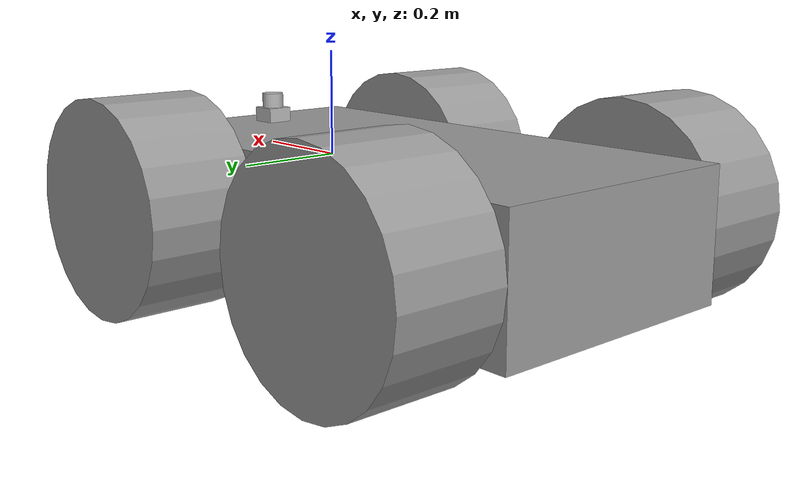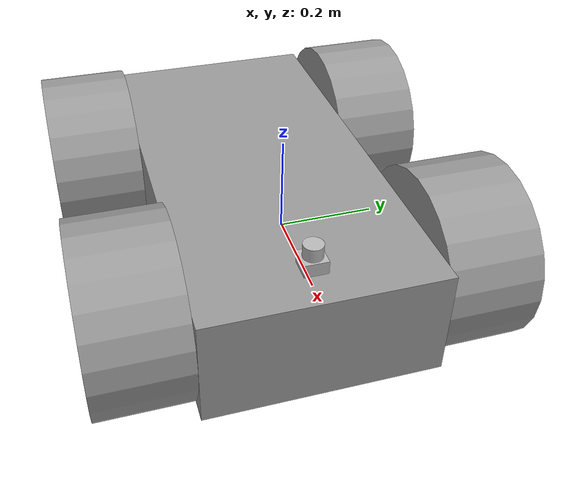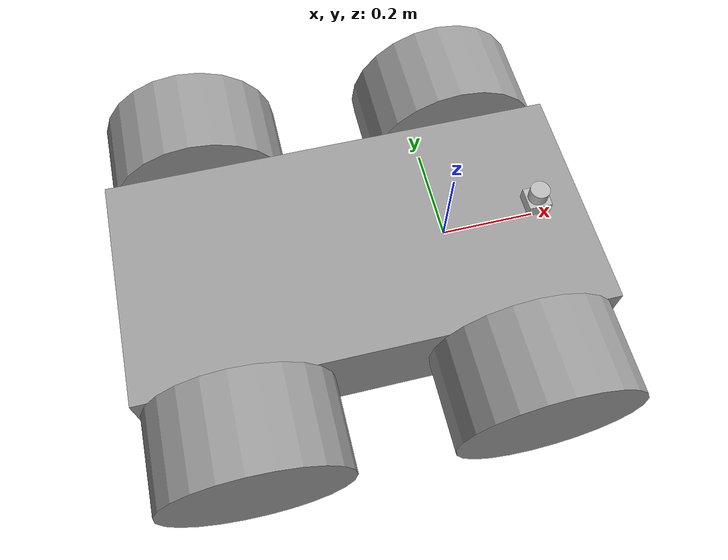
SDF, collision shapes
<?xml version='1.0'?>
<sdf version='1.7'>
  <model name='AGV_with_hokuyu_lidar'>
    <model name='AGV'>
      <link name='link_0'>
        <inertial>
          <mass>0.165304</mass>
          <inertia>
            <ixx>0.00689409</ixx>
            <ixy>0</ixy>
            <ixz>0</ixz>
            <iyy>0.0137549</iyy>
            <iyz>0</iyz>
            <izz>0.018778</izz>
          </inertia>
          <pose>0 0 0 0 -0 0</pose>
        </inertial>
        <pose>0 0 -0.008 0 -0 0</pose>
        <gravity>1</gravity>
        <self_collide>0</self_collide>
        <kinematic>0</kinematic>
        <enable_wind>0</enable_wind>
        <visual name='visual'>
          <pose>0 0 0 0 -0 0</pose>
          <geometry>
            <box>
              <size>1 0.5 0.24</size>
            </box>
          </geometry>
          <material>
            <lighting>1</lighting>
            <script>
              <uri>file://media/materials/scripts/gazebo.material</uri>
              <name>Gazebo/Grey</name>
            </script>
            <shader type='pixel'>
              <normal_map>__default__</normal_map>
            </shader>
            <ambient>0.3 0.3 0.3 1</ambient>
            <diffuse>0.7 0.7 0.7 1</diffuse>
            <specular>0.01 0.01 0.01 1</specular>
            <emissive>0 0 0 1</emissive>
          </material>
          <transparency>0</transparency>
          <cast_shadows>1</cast_shadows>
        </visual>
        <collision name='collision'>
          <laser_retro>0</laser_retro>
          <max_contacts>10</max_contacts>
          <pose>0 0 0 0 -0 0</pose>
          <geometry>
            <box>
              <size>1 0.5 0.24</size>
            </box>
          </geometry>
          <surface>
            <friction>
              <ode>
                <mu>1</mu>
                <mu2>1</mu2>
                <fdir1>0 0 0</fdir1>
                <slip1>0</slip1>
                <slip2>0</slip2>
              </ode>
              <torsional>
                <coefficient>1</coefficient>
                <patch_radius>0</patch_radius>
                <surface_radius>0</surface_radius>
                <use_patch_radius>1</use_patch_radius>
                <ode>
                  <slip>0</slip>
                </ode>
              </torsional>
            </friction>
            <bounce>
              <restitution_coefficient>0</restitution_coefficient>
              <threshold>1e+06</threshold>
            </bounce>
            <contact>
              <collide_without_contact>0</collide_without_contact>
              <collide_without_contact_bitmask>1</collide_without_contact_bitmask>
              <collide_bitmask>1</collide_bitmask>
              <ode>
                <soft_cfm>0</soft_cfm>
                <soft_erp>0.2</soft_erp>
                <kp>1e+13</kp>
                <kd>1</kd>
                <max_vel>0.01</max_vel>
                <min_depth>0</min_depth>
              </ode>
              <bullet>
                <split_impulse>1</split_impulse>
                <split_impulse_penetration_threshold>-0.01</split_impulse_penetration_threshold>
                <soft_cfm>0</soft_cfm>
                <soft_erp>0.2</soft_erp>
                <kp>1e+13</kp>
                <kd>1</kd>
              </bullet>
            </contact>
          </surface>
        </collision>
      </link>
      <link name='link_1_clone_0'>
        <inertial>
          <mass>1</mass>
          <inertia>
            <ixx>0.145833</ixx>
            <ixy>0</ixy>
            <ixz>0</ixz>
            <iyy>0.145833</iyy>
            <iyz>0</iyz>
            <izz>0.125</izz>
          </inertia>
          <pose>0 0 0 0 -0 0</pose>
        </inertial>
        <pose>0.3 0.350019 0.002 1.5707 -0 0</pose>
        <gravity>1</gravity>
        <self_collide>0</self_collide>
        <kinematic>0</kinematic>
        <enable_wind>0</enable_wind>
        <visual name='visual'>
          <pose>0 0 0 0 -0 0</pose>
          <geometry>
            <cylinder>
              <radius>0.2</radius>
              <length>0.2</length>
            </cylinder>
          </geometry>
          <material>
            <lighting>1</lighting>
            <script>
              <uri>file://media/materials/scripts/gazebo.material</uri>
              <name>Gazebo/Grey</name>
            </script>
            <shader type='pixel'>
              <normal_map>__default__</normal_map>
            </shader>
            <ambient>0.3 0.3 0.3 1</ambient>
            <diffuse>0.7 0.7 0.7 1</diffuse>
            <specular>0.01 0.01 0.01 1</specular>
            <emissive>0 0 0 1</emissive>
          </material>
          <transparency>0</transparency>
          <cast_shadows>1</cast_shadows>
        </visual>
        <collision name='collision'>
          <laser_retro>0</laser_retro>
          <max_contacts>10</max_contacts>
          <pose>0 0 0 0 -0 0</pose>
          <geometry>
            <cylinder>
              <radius>0.2</radius>
              <length>0.2</length>
            </cylinder>
          </geometry>
          <surface>
            <friction>
              <ode>
                <mu>1</mu>
                <mu2>1</mu2>
                <fdir1>0 0 0</fdir1>
                <slip1>0</slip1>
                <slip2>0</slip2>
              </ode>
              <torsional>
                <coefficient>1</coefficient>
                <patch_radius>0</patch_radius>
                <surface_radius>0</surface_radius>
                <use_patch_radius>1</use_patch_radius>
                <ode>
                  <slip>0</slip>
                </ode>
              </torsional>
            </friction>
            <bounce>
              <restitution_coefficient>0</restitution_coefficient>
              <threshold>1e+06</threshold>
            </bounce>
            <contact>
              <collide_without_contact>0</collide_without_contact>
              <collide_without_contact_bitmask>1</collide_without_contact_bitmask>
              <collide_bitmask>1</collide_bitmask>
              <ode>
                <soft_cfm>0</soft_cfm>
                <soft_erp>0.2</soft_erp>
                <kp>1e+13</kp>
                <kd>1</kd>
                <max_vel>0.01</max_vel>
                <min_depth>0</min_depth>
              </ode>
              <bullet>
                <split_impulse>1</split_impulse>
                <split_impulse_penetration_threshold>-0.01</split_impulse_penetration_threshold>
                <soft_cfm>0</soft_cfm>
                <soft_erp>0.2</soft_erp>
                <kp>1e+13</kp>
                <kd>1</kd>
              </bullet>
            </contact>
          </surface>
        </collision>
      </link>
      <link name='link_1_clone_0_clone'>
        <inertial>
          <mass>1</mass>
          <inertia>
            <ixx>0.145833</ixx>
            <ixy>0</ixy>
            <ixz>0</ixz>
            <iyy>0.145833</iyy>
            <iyz>0</iyz>
            <izz>0.125</izz>
          </inertia>
          <pose>0 0 0 0 -0 0</pose>
        </inertial>
        <pose>-0.3 -0.350019 0.002 1.5707 -0 0</pose>
        <gravity>1</gravity>
        <self_collide>0</self_collide>
        <kinematic>0</kinematic>
        <enable_wind>0</enable_wind>
        <visual name='visual'>
          <pose>0 0 0 0 -0 0</pose>
          <geometry>
            <cylinder>
              <radius>0.2</radius>
              <length>0.2</length>
            </cylinder>
          </geometry>
          <material>
            <lighting>1</lighting>
            <script>
              <uri>file://media/materials/scripts/gazebo.material</uri>
              <name>Gazebo/Grey</name>
            </script>
            <shader type='pixel'>
              <normal_map>__default__</normal_map>
            </shader>
            <ambient>0.3 0.3 0.3 1</ambient>
            <diffuse>0.7 0.7 0.7 1</diffuse>
            <specular>0.01 0.01 0.01 1</specular>
            <emissive>0 0 0 1</emissive>
          </material>
          <transparency>0</transparency>
          <cast_shadows>1</cast_shadows>
        </visual>
        <collision name='collision'>
          <laser_retro>0</laser_retro>
          <max_contacts>10</max_contacts>
          <pose>0 0 0 0 -0 0</pose>
          <geometry>
            <cylinder>
              <radius>0.2</radius>
              <length>0.2</length>
            </cylinder>
          </geometry>
          <surface>
            <friction>
              <ode>
                <mu>1</mu>
                <mu2>1</mu2>
                <fdir1>0 0 0</fdir1>
                <slip1>0</slip1>
                <slip2>0</slip2>
              </ode>
              <torsional>
                <coefficient>1</coefficient>
                <patch_radius>0</patch_radius>
                <surface_radius>0</surface_radius>
                <use_patch_radius>1</use_patch_radius>
                <ode>
                  <slip>0</slip>
                </ode>
              </torsional>
            </friction>
            <bounce>
              <restitution_coefficient>0</restitution_coefficient>
              <threshold>1e+06</threshold>
            </bounce>
            <contact>
              <collide_without_contact>0</collide_without_contact>
              <collide_without_contact_bitmask>1</collide_without_contact_bitmask>
              <collide_bitmask>1</collide_bitmask>
              <ode>
                <soft_cfm>0</soft_cfm>
                <soft_erp>0.2</soft_erp>
                <kp>1e+13</kp>
                <kd>1</kd>
                <max_vel>0.01</max_vel>
                <min_depth>0</min_depth>
              </ode>
              <bullet>
                <split_impulse>1</split_impulse>
                <split_impulse_penetration_threshold>-0.01</split_impulse_penetration_threshold>
                <soft_cfm>0</soft_cfm>
                <soft_erp>0.2</soft_erp>
                <kp>1e+13</kp>
                <kd>1</kd>
              </bullet>
            </contact>
          </surface>
        </collision>
      </link>
      <link name='link_1_clone_0_clone_0'>
        <inertial>
          <mass>1</mass>
          <inertia>
            <ixx>0.145833</ixx>
            <ixy>0</ixy>
            <ixz>0</ixz>
            <iyy>0.145833</iyy>
            <iyz>0</iyz>
            <izz>0.125</izz>
          </inertia>
          <pose>0 0 0 0 -0 0</pose>
        </inertial>
        <pose>0.3 -0.350019 0.002 1.5707 -0 0</pose>
        <gravity>1</gravity>
        <self_collide>0</self_collide>
        <kinematic>0</kinematic>
        <enable_wind>0</enable_wind>
        <visual name='visual'>
          <pose>0 0 0 0 -0 0</pose>
          <geometry>
            <cylinder>
              <radius>0.2</radius>
              <length>0.2</length>
            </cylinder>
          </geometry>
          <material>
            <lighting>1</lighting>
            <script>
              <uri>file://media/materials/scripts/gazebo.material</uri>
              <name>Gazebo/Grey</name>
            </script>
            <shader type='pixel'>
              <normal_map>__default__</normal_map>
            </shader>
            <ambient>0.3 0.3 0.3 1</ambient>
            <diffuse>0.7 0.7 0.7 1</diffuse>
            <specular>0.01 0.01 0.01 1</specular>
            <emissive>0 0 0 1</emissive>
          </material>
          <transparency>0</transparency>
          <cast_shadows>1</cast_shadows>
        </visual>
        <collision name='collision'>
          <laser_retro>0</laser_retro>
          <max_contacts>10</max_contacts>
          <pose>0 0 0 0 -0 0</pose>
          <geometry>
            <cylinder>
              <radius>0.2</radius>
              <length>0.2</length>
            </cylinder>
          </geometry>
          <surface>
            <friction>
              <ode>
                <mu>1</mu>
                <mu2>1</mu2>
                <fdir1>0 0 0</fdir1>
                <slip1>0</slip1>
                <slip2>0</slip2>
              </ode>
              <torsional>
                <coefficient>1</coefficient>
                <patch_radius>0</patch_radius>
                <surface_radius>0</surface_radius>
                <use_patch_radius>1</use_patch_radius>
                <ode>
                  <slip>0</slip>
                </ode>
              </torsional>
            </friction>
            <bounce>
              <restitution_coefficient>0</restitution_coefficient>
              <threshold>1e+06</threshold>
            </bounce>
            <contact>
              <collide_without_contact>0</collide_without_contact>
              <collide_without_contact_bitmask>1</collide_without_contact_bitmask>
              <collide_bitmask>1</collide_bitmask>
              <ode>
                <soft_cfm>0</soft_cfm>
                <soft_erp>0.2</soft_erp>
                <kp>1e+13</kp>
                <kd>1</kd>
                <max_vel>0.01</max_vel>
                <min_depth>0</min_depth>
              </ode>
              <bullet>
                <split_impulse>1</split_impulse>
                <split_impulse_penetration_threshold>-0.01</split_impulse_penetration_threshold>
                <soft_cfm>0</soft_cfm>
                <soft_erp>0.2</soft_erp>
                <kp>1e+13</kp>
                <kd>1</kd>
              </bullet>
            </contact>
          </surface>
        </collision>
      </link>
      <link name='link_1_clone_1'>
        <inertial>
          <mass>1</mass>
          <inertia>
            <ixx>0.145833</ixx>
            <ixy>0</ixy>
            <ixz>0</ixz>
            <iyy>0.145833</iyy>
            <iyz>0</iyz>
            <izz>0.125</izz>
          </inertia>
          <pose>0 0 0 0 -0 0</pose>
        </inertial>
        <pose>-0.3 0.350019 0.002 1.5707 -0 0</pose>
        <gravity>1</gravity>
        <self_collide>0</self_collide>
        <kinematic>0</kinematic>
        <enable_wind>0</enable_wind>
        <visual name='visual'>
          <pose>0 0 0 0 -0 0</pose>
          <geometry>
            <cylinder>
              <radius>0.2</radius>
              <length>0.2</length>
            </cylinder>
          </geometry>
          <material>
            <lighting>1</lighting>
            <script>
              <uri>file://media/materials/scripts/gazebo.material</uri>
              <name>Gazebo/Grey</name>
            </script>
            <shader type='pixel'>
              <normal_map>__default__</normal_map>
            </shader>
            <ambient>0.3 0.3 0.3 1</ambient>
            <diffuse>0.7 0.7 0.7 1</diffuse>
            <specular>0.01 0.01 0.01 1</specular>
            <emissive>0 0 0 1</emissive>
          </material>
          <transparency>0</transparency>
          <cast_shadows>1</cast_shadows>
        </visual>
        <collision name='collision'>
          <laser_retro>0</laser_retro>
          <max_contacts>10</max_contacts>
          <pose>0 0 0 0 -0 0</pose>
          <geometry>
            <cylinder>
              <radius>0.2</radius>
              <length>0.2</length>
            </cylinder>
          </geometry>
          <surface>
            <friction>
              <ode>
                <mu>1</mu>
                <mu2>1</mu2>
                <fdir1>0 0 0</fdir1>
                <slip1>0</slip1>
                <slip2>0</slip2>
              </ode>
              <torsional>
                <coefficient>1</coefficient>
                <patch_radius>0</patch_radius>
                <surface_radius>0</surface_radius>
                <use_patch_radius>1</use_patch_radius>
                <ode>
                  <slip>0</slip>
                </ode>
              </torsional>
            </friction>
            <bounce>
              <restitution_coefficient>0</restitution_coefficient>
              <threshold>1e+06</threshold>
            </bounce>
            <contact>
              <collide_without_contact>0</collide_without_contact>
              <collide_without_contact_bitmask>1</collide_without_contact_bitmask>
              <collide_bitmask>1</collide_bitmask>
              <ode>
                <soft_cfm>0</soft_cfm>
                <soft_erp>0.2</soft_erp>
                <kp>1e+13</kp>
                <kd>1</kd>
                <max_vel>0.01</max_vel>
                <min_depth>0</min_depth>
              </ode>
              <bullet>
                <split_impulse>1</split_impulse>
                <split_impulse_penetration_threshold>-0.01</split_impulse_penetration_threshold>
                <soft_cfm>0</soft_cfm>
                <soft_erp>0.2</soft_erp>
                <kp>1e+13</kp>
                <kd>1</kd>
              </bullet>
            </contact>
          </surface>
        </collision>
      </link>
      <joint name='link_0_JOINT_2' type='revolute'>
        <parent>link_0</parent>
        <child>link_1_clone_0_clone_0</child>
        <pose>0 0 0 0 -0 0</pose>
        <axis>
          <xyz>0 0 1</xyz>
          <limit>
            <lower>-1.79769e+308</lower>
            <upper>1.79769e+308</upper>
            <effort>-1</effort>
            <velocity>-1</velocity>
          </limit>
          <dynamics>
            <spring_reference>0</spring_reference>
            <spring_stiffness>0</spring_stiffness>
            <damping>0</damping>
          </dynamics>
        </axis>
        <physics>
          <ode>
            <limit>
              <cfm>0</cfm>
              <erp>0.2</erp>
            </limit>
            <suspension>
              <cfm>0</cfm>
              <erp>0.2</erp>
            </suspension>
          </ode>
        </physics>
      </joint>
      <joint name='link_0_JOINT_3' type='revolute'>
        <parent>link_0</parent>
        <child>link_1_clone_0_clone</child>
        <pose>0 0 0 0 -0 0</pose>
        <axis>
          <xyz>0 0 1</xyz>
          <limit>
            <lower>-1.79769e+308</lower>
            <upper>1.79769e+308</upper>
            <effort>-1</effort>
            <velocity>-1</velocity>
          </limit>
          <dynamics>
            <spring_reference>0</spring_reference>
            <spring_stiffness>0</spring_stiffness>
            <damping>0</damping>
          </dynamics>
        </axis>
        <physics>
          <ode>
            <limit>
              <cfm>0</cfm>
              <erp>0.2</erp>
            </limit>
            <suspension>
              <cfm>0</cfm>
              <erp>0.2</erp>
            </suspension>
          </ode>
        </physics>
      </joint>
      <joint name='link_0_JOINT_4' type='revolute'>
        <parent>link_0</parent>
        <child>link_1_clone_0</child>
        <pose>0 0 0 0 -0 0</pose>
        <axis>
          <xyz>0 0 1</xyz>
          <limit>
            <lower>-1.79769e+308</lower>
            <upper>1.79769e+308</upper>
            <effort>-1</effort>
            <velocity>-1</velocity>
          </limit>
          <dynamics>
            <spring_reference>0</spring_reference>
            <spring_stiffness>0</spring_stiffness>
            <damping>0</damping>
          </dynamics>
        </axis>
        <physics>
          <ode>
            <limit>
              <cfm>0</cfm>
              <erp>0.2</erp>
            </limit>
            <suspension>
              <cfm>0</cfm>
              <erp>0.2</erp>
            </suspension>
          </ode>
        </physics>
      </joint>
      <joint name='link_0_JOINT_5' type='revolute'>
        <parent>link_0</parent>
        <child>link_1_clone_1</child>
        <pose>0 0 0 0 -0 0</pose>
        <axis>
          <xyz>0 0 1</xyz>
          <limit>
            <lower>-1.79769e+308</lower>
            <upper>1.79769e+308</upper>
            <effort>-1</effort>
            <velocity>-1</velocity>
          </limit>
          <dynamics>
            <spring_reference>0</spring_reference>
            <spring_stiffness>0</spring_stiffness>
            <damping>0</damping>
          </dynamics>
        </axis>
        <physics>
          <ode>
            <limit>
              <cfm>0</cfm>
              <erp>0.2</erp>
            </limit>
            <suspension>
              <cfm>0</cfm>
              <erp>0.2</erp>
            </suspension>
          </ode>
        </physics>
      </joint>
      <static>0</static>
      <allow_auto_disable>1</allow_auto_disable>
      <pose>-0.19913 0.001349 -0.067348 0 -0 0</pose>
    </model>
    <model name='hokuyo'>
      <pose>0.19913 -0.001349 0.067348 0 -0 0</pose>
      <link name='link'>
        <inertial>
          <mass>0.1</mass>
        </inertial>
        <visual name='visual'>
          <geometry>
            <mesh>
              <uri>model://hokuyo/meshes/hokuyo.dae</uri>
            </mesh>
          </geometry>
        </visual>
        <collision name='collision-base'>
          <pose>0 0 -0.0145 0 -0 0</pose>
          <geometry>
            <box>
              <size>0.05 0.05 0.041</size>
            </box>
          </geometry>
        </collision>
        <collision name='collision-top'>
          <pose>0 0 0.0205 0 -0 0</pose>
          <geometry>
            <cylinder>
              <radius>0.021</radius>
              <length>0.029</length>
            </cylinder>
          </geometry>
        </collision>
        <sensor name='laser' type='ray'>
          <pose>0.01 0 0.0175 0 -0 0</pose>
          <ray>
            <scan>
              <horizontal>
                <samples>640</samples>
                <resolution>1</resolution>
                <min_angle>-2.26889</min_angle>
                <max_angle>2.2689</max_angle>
              </horizontal>
            </scan>
            <range>
              <min>0.08</min>
              <max>10</max>
              <resolution>0.01</resolution>
            </range>
          </ray>
          <plugin name='laser' filename='libRayPlugin.so'/>
          <always_on>1</always_on>
          <update_rate>30</update_rate>
          <visualize>1</visualize>
        </sensor>
      </link>
    </model>
    <joint name='link_0_JOINT_0' type='fixed'>
      <parent>AGV::link_0</parent>
      <child>hokuyo::link</child>
      <pose>0 0 0 0 -0 0</pose>
      <physics>
        <ode>
          <limit>
            <cfm>0</cfm>
            <erp>0.2</erp>
          </limit>
          <suspension>
            <cfm>0</cfm>
            <erp>0.2</erp>
          </suspension>
        </ode>
      </physics>
    </joint>
    <static>0</static>
    <allow_auto_disable>1</allow_auto_disable>
  </model>
</sdf>
